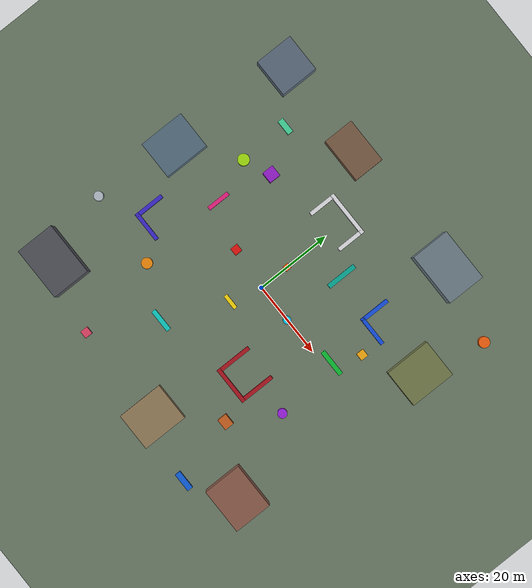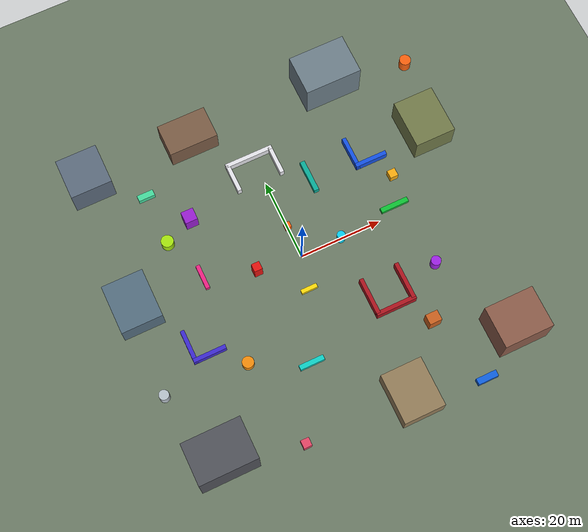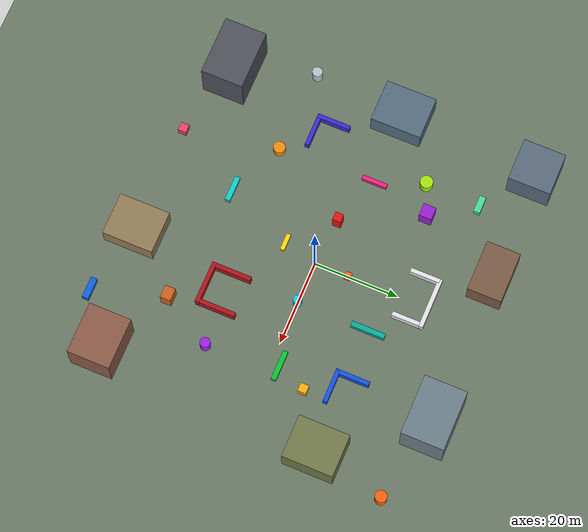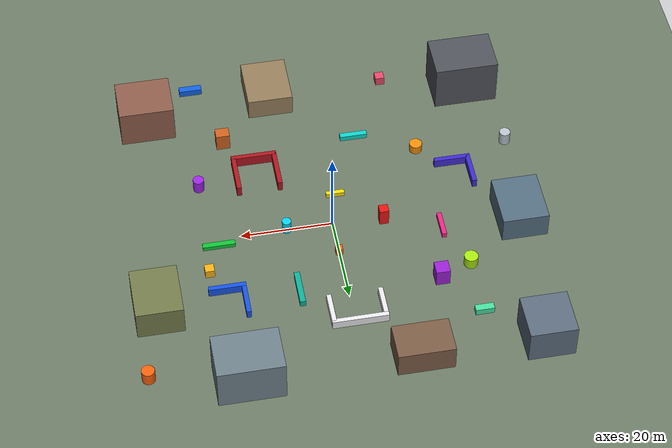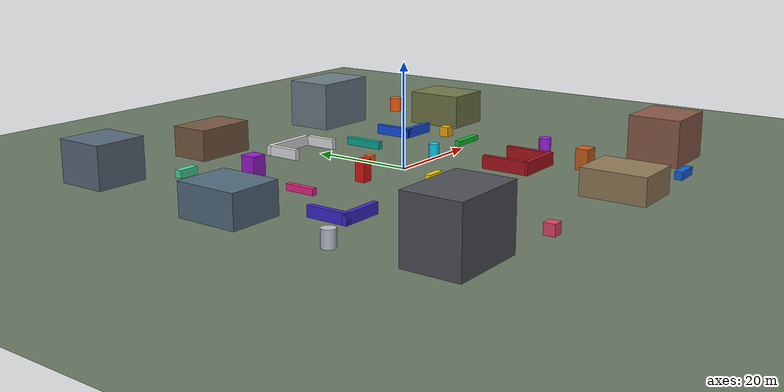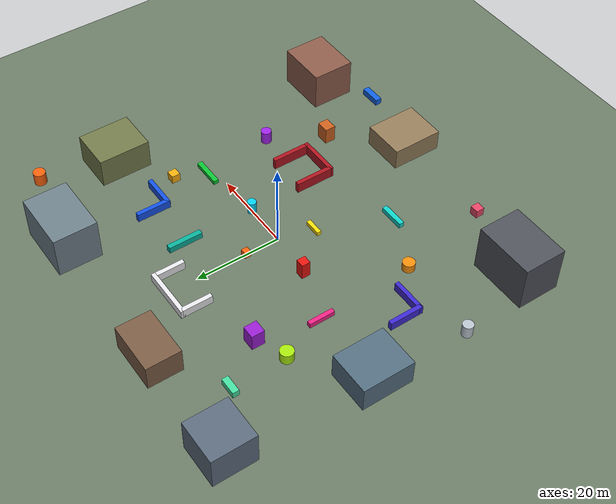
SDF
<?xml version="1.0" encoding="utf-8"?>
<sdf version="1.9">
  <world name="default">
    <gravity>0 0 -9.8</gravity>
    <scene>
      <ambient>0.45 0.45 0.48 1</ambient>
      <background>0.68 0.78 0.90 1</background>
      <shadows>true</shadows>
      <grid>true</grid>
    </scene>

    <light name="flat_field_sun" type="directional">
      <cast_shadows>true</cast_shadows>
      <pose>0 0 40 0 0 0</pose>
      <diffuse>0.9 0.88 0.82 1</diffuse>
      <specular>0.25 0.25 0.25 1</specular>
      <attenuation>
        <range>1000</range>
        <constant>0.9</constant>
        <linear>0.01</linear>
        <quadratic>0.001</quadratic>
      </attenuation>
      <direction>-0.45 0.25 -0.86</direction>
    </light>

    <model name="flat_ground_100m">
      <static>true</static>
      <pose>0 0 0 0 0 0</pose>
      <link name="flat_ground_100m_link">
        <collision name="flat_ground_100m_collision">
          <geometry>
            <plane>
              <normal>0 0 1</normal>
              <size>100 100</size>
            </plane>
          </geometry>
        </collision>
        <visual name="flat_ground_100m_visual">
          <geometry>
            <plane>
              <normal>0 0 1</normal>
              <size>100 100</size>
            </plane>
          </geometry>
          <material>
            <ambient>0.32 0.36 0.31 1</ambient>
            <diffuse>0.42 0.48 0.40 1</diffuse>
            <specular>0.04 0.04 0.04 1</specular>
          </material>
        </visual>
      </link>
    </model>

    <!-- Eight large, primitive building-like blocks. -->
    <model name="building_northwest_slate">
      <static>true</static>
      <pose>-38 38 0 0 0 0</pose>
      <link name="building_northwest_slate_link">
        <pose>0 0 4 0 0 0</pose>
        <collision name="building_northwest_slate_collision">
          <geometry><box><size>10 10 8</size></box></geometry>
        </collision>
        <visual name="building_northwest_slate_visual">
          <geometry><box><size>10 10 8</size></box></geometry>
          <material><ambient>0.25 0.29 0.34 1</ambient><diffuse>0.36 0.42 0.49 1</diffuse></material>
        </visual>
      </link>
    </model>

    <model name="building_north_umber">
      <static>true</static>
      <pose>-12 38 0 0 0 0</pose>
      <link name="building_north_umber_link">
        <pose>0 0 3 0 0 0</pose>
        <collision name="building_north_umber_collision">
          <geometry><box><size>12 8 6</size></box></geometry>
        </collision>
        <visual name="building_north_umber_visual">
          <geometry><box><size>12 8 6</size></box></geometry>
          <material><ambient>0.34 0.25 0.19 1</ambient><diffuse>0.48 0.36 0.27 1</diffuse></material>
        </visual>
      </link>
    </model>

    <model name="building_northeast_steel">
      <static>true</static>
      <pose>24 38 0 0 0 0</pose>
      <link name="building_northeast_steel_link">
        <pose>0 0 5 0 0 0</pose>
        <collision name="building_northeast_steel_collision">
          <geometry><box><size>14 10 10</size></box></geometry>
        </collision>
        <visual name="building_northeast_steel_visual">
          <geometry><box><size>14 10 10</size></box></geometry>
          <material><ambient>0.30 0.35 0.38 1</ambient><diffuse>0.43 0.50 0.54 1</diffuse></material>
        </visual>
      </link>
    </model>

    <model name="building_east_olive">
      <static>true</static>
      <pose>40 17 0 0 0 0</pose>
      <link name="building_east_olive_link">
        <pose>0 0 3.5 0 0 0</pose>
        <collision name="building_east_olive_collision">
          <geometry><box><size>10 12 7</size></box></geometry>
        </collision>
        <visual name="building_east_olive_visual">
          <geometry><box><size>10 12 7</size></box></geometry>
          <material><ambient>0.31 0.33 0.20 1</ambient><diffuse>0.45 0.48 0.29 1</diffuse></material>
        </visual>
      </link>
    </model>

    <model name="building_southeast_clay">
      <static>true</static>
      <pose>36 -36 0 0 0 0</pose>
      <link name="building_southeast_clay_link">
        <pose>0 0 4.5 0 0 0</pose>
        <collision name="building_southeast_clay_collision">
          <geometry><box><size>12 10 9</size></box></geometry>
        </collision>
        <visual name="building_southeast_clay_visual">
          <geometry><box><size>12 10 9</size></box></geometry>
          <material><ambient>0.38 0.25 0.20 1</ambient><diffuse>0.55 0.36 0.29 1</diffuse></material>
        </visual>
      </link>
    </model>

    <model name="building_south_sandstone">
      <static>true</static>
      <pose>8 -40 0 0 0 0</pose>
      <link name="building_south_sandstone_link">
        <pose>0 0 2.5 0 0 0</pose>
        <collision name="building_south_sandstone_collision">
          <geometry><box><size>10 12 5</size></box></geometry>
        </collision>
        <visual name="building_south_sandstone_visual">
          <geometry><box><size>10 12 5</size></box></geometry>
          <material><ambient>0.40 0.34 0.25 1</ambient><diffuse>0.58 0.49 0.35 1</diffuse></material>
        </visual>
      </link>
    </model>

    <model name="building_southwest_graphite">
      <static>true</static>
      <pose>-36 -35 0 0 0 0</pose>
      <link name="building_southwest_graphite_link">
        <pose>0 0 5.5 0 0 0</pose>
        <collision name="building_southwest_graphite_collision">
          <geometry><box><size>14 10 11</size></box></geometry>
        </collision>
        <visual name="building_southwest_graphite_visual">
          <geometry><box><size>14 10 11</size></box></geometry>
          <material><ambient>0.20 0.21 0.23 1</ambient><diffuse>0.31 0.32 0.35 1</diffuse></material>
        </visual>
      </link>
    </model>

    <model name="building_west_bluegray">
      <static>true</static>
      <pose>-40 5 0 0 0 0</pose>
      <link name="building_west_bluegray_link">
        <pose>0 0 3 0 0 0</pose>
        <collision name="building_west_bluegray_collision">
          <geometry><box><size>10 12 6</size></box></geometry>
        </collision>
        <visual name="building_west_bluegray_visual">
          <geometry><box><size>10 12 6</size></box></geometry>
          <material><ambient>0.22 0.29 0.34 1</ambient><diffuse>0.33 0.43 0.50 1</diffuse></material>
        </visual>
      </link>
    </model>

    <!-- Twenty-two smaller obstacles and compound obstacle groups. -->
    <model name="cube_spawn_north_orange">
      <static>true</static>
      <pose>0 8 0 0 0 0</pose>
      <link name="cube_spawn_north_orange_link">
        <pose>0 0 0.75 0 0 0</pose>
        <collision name="cube_spawn_north_orange_collision">
          <geometry><box><size>1.5 1.5 1.5</size></box></geometry>
        </collision>
        <visual name="cube_spawn_north_orange_visual">
          <geometry><box><size>1.5 1.5 1.5</size></box></geometry>
          <material><ambient>0.75 0.25 0.03 1</ambient><diffuse>1.0 0.38 0.04 1</diffuse></material>
        </visual>
      </link>
    </model>

    <model name="column_spawn_east_cyan">
      <static>true</static>
      <pose>10 0 0 0 0 0</pose>
      <link name="column_spawn_east_cyan_link">
        <pose>0 0 1.5 0 0 0</pose>
        <collision name="column_spawn_east_cyan_collision">
          <geometry><cylinder><radius>1</radius><length>3</length></cylinder></geometry>
        </collision>
        <visual name="column_spawn_east_cyan_visual">
          <geometry><cylinder><radius>1</radius><length>3</length></cylinder></geometry>
          <material><ambient>0.02 0.55 0.64 1</ambient><diffuse>0.03 0.82 0.95 1</diffuse></material>
        </visual>
      </link>
    </model>

    <model name="barrier_spawn_south_yellow">
      <static>true</static>
      <pose>-2 -8 0 0 0 0</pose>
      <link name="barrier_spawn_south_yellow_link">
        <pose>0 0 0.5 0 0 0</pose>
        <collision name="barrier_spawn_south_yellow_collision">
          <geometry><box><size>4 1 1</size></box></geometry>
        </collision>
        <visual name="barrier_spawn_south_yellow_visual">
          <geometry><box><size>4 1 1</size></box></geometry>
          <material><ambient>0.75 0.62 0.02 1</ambient><diffuse>1.0 0.86 0.03 1</diffuse></material>
        </visual>
      </link>
    </model>

    <model name="tower_spawn_west_red">
      <static>true</static>
      <pose>-11 1 0 0 0 0</pose>
      <link name="tower_spawn_west_red_link">
        <pose>0 0 2 0 0 0</pose>
        <collision name="tower_spawn_west_red_collision">
          <geometry><box><size>2 2 4</size></box></geometry>
        </collision>
        <visual name="tower_spawn_west_red_visual">
          <geometry><box><size>2 2 4</size></box></geometry>
          <material><ambient>0.62 0.05 0.04 1</ambient><diffuse>0.90 0.08 0.06 1</diffuse></material>
        </visual>
      </link>
    </model>

    <model name="barrier_north_mid_teal">
      <static>true</static>
      <pose>10 17 0 0 0 0</pose>
      <link name="barrier_north_mid_teal_link">
        <pose>0 0 0.75 0 0 0</pose>
        <collision name="barrier_north_mid_teal_collision">
          <geometry><box><size>1.2 8 1.5</size></box></geometry>
        </collision>
        <visual name="barrier_north_mid_teal_visual">
          <geometry><box><size>1.2 8 1.5</size></box></geometry>
          <material><ambient>0.02 0.40 0.36 1</ambient><diffuse>0.03 0.68 0.60 1</diffuse></material>
        </visual>
      </link>
    </model>

    <model name="tower_northwest_purple">
      <static>true</static>
      <pose>-20 19 0 0 0 0</pose>
      <link name="tower_northwest_purple_link">
        <pose>0 0 2 0 0 0</pose>
        <collision name="tower_northwest_purple_collision">
          <geometry><box><size>3 3 4</size></box></geometry>
        </collision>
        <visual name="tower_northwest_purple_visual">
          <geometry><box><size>3 3 4</size></box></geometry>
          <material><ambient>0.38 0.08 0.52 1</ambient><diffuse>0.60 0.12 0.82 1</diffuse></material>
        </visual>
      </link>
    </model>

    <model name="column_northwest_lime">
      <static>true</static>
      <pose>-27 16 0 0 0 0</pose>
      <link name="column_northwest_lime_link">
        <pose>0 0 1.25 0 0 0</pose>
        <collision name="column_northwest_lime_collision">
          <geometry><cylinder><radius>1.5</radius><length>2.5</length></cylinder></geometry>
        </collision>
        <visual name="column_northwest_lime_visual">
          <geometry><cylinder><radius>1.5</radius><length>2.5</length></cylinder></geometry>
          <material><ambient>0.43 0.62 0.03 1</ambient><diffuse>0.65 0.90 0.05 1</diffuse></material>
        </visual>
      </link>
    </model>

    <model name="l_wall_northeast_blue">
      <static>true</static>
      <pose>25 18 0 0 0 0</pose>
      <link name="l_wall_northeast_blue_horizontal_link">
        <pose>0 -3.5 1 0 0 0</pose>
        <collision name="l_wall_northeast_blue_horizontal_collision">
          <geometry><box><size>8 1 2</size></box></geometry>
        </collision>
        <visual name="l_wall_northeast_blue_horizontal_visual">
          <geometry><box><size>8 1 2</size></box></geometry>
          <material><ambient>0.05 0.20 0.62 1</ambient><diffuse>0.08 0.32 0.90 1</diffuse></material>
        </visual>
      </link>
      <link name="l_wall_northeast_blue_vertical_link">
        <pose>-3.5 0 1 0 0 0</pose>
        <collision name="l_wall_northeast_blue_vertical_collision">
          <geometry><box><size>1 8 2</size></box></geometry>
        </collision>
        <visual name="l_wall_northeast_blue_vertical_visual">
          <geometry><box><size>1 8 2</size></box></geometry>
          <material><ambient>0.05 0.20 0.62 1</ambient><diffuse>0.08 0.32 0.90 1</diffuse></material>
        </visual>
      </link>
    </model>

    <model name="u_enclosure_northcenter_white">
      <static>true</static>
      <pose>-1 24 0 0 0 0</pose>
      <link name="u_enclosure_northcenter_white_back_link">
        <pose>0 3.5 1 0 0 0</pose>
        <collision name="u_enclosure_northcenter_white_back_collision">
          <geometry><box><size>12 1 2</size></box></geometry>
        </collision>
        <visual name="u_enclosure_northcenter_white_back_visual">
          <geometry><box><size>12 1 2</size></box></geometry>
          <material><ambient>0.68 0.68 0.70 1</ambient><diffuse>0.90 0.90 0.92 1</diffuse></material>
        </visual>
      </link>
      <link name="u_enclosure_northcenter_white_left_link">
        <pose>-5.5 0 1 0 0 0</pose>
        <collision name="u_enclosure_northcenter_white_left_collision">
          <geometry><box><size>1 7 2</size></box></geometry>
        </collision>
        <visual name="u_enclosure_northcenter_white_left_visual">
          <geometry><box><size>1 7 2</size></box></geometry>
          <material><ambient>0.68 0.68 0.70 1</ambient><diffuse>0.90 0.90 0.92 1</diffuse></material>
        </visual>
      </link>
      <link name="u_enclosure_northcenter_white_right_link">
        <pose>5.5 0 1 0 0 0</pose>
        <collision name="u_enclosure_northcenter_white_right_collision">
          <geometry><box><size>1 7 2</size></box></geometry>
        </collision>
        <visual name="u_enclosure_northcenter_white_right_visual">
          <geometry><box><size>1 7 2</size></box></geometry>
          <material><ambient>0.68 0.68 0.70 1</ambient><diffuse>0.90 0.90 0.92 1</diffuse></material>
        </visual>
      </link>
    </model>

    <model name="short_wall_west_mid_pink">
      <static>true</static>
      <pose>-23 5 0 0 0 0</pose>
      <link name="short_wall_west_mid_pink_link">
        <pose>0 0 0.6 0 0 0</pose>
        <collision name="short_wall_west_mid_pink_collision">
          <geometry><box><size>1 6 1.2</size></box></geometry>
        </collision>
        <visual name="short_wall_west_mid_pink_visual">
          <geometry><box><size>1 6 1.2</size></box></geometry>
          <material><ambient>0.68 0.08 0.36 1</ambient><diffuse>0.94 0.13 0.52 1</diffuse></material>
        </visual>
      </link>
    </model>

    <model name="wide_wall_east_mid_green">
      <static>true</static>
      <pose>25 2 0 0 0 0</pose>
      <link name="wide_wall_east_mid_green_link">
        <pose>0 0 0.5 0 0 0</pose>
        <collision name="wide_wall_east_mid_green_collision">
          <geometry><box><size>7 1.2 1</size></box></geometry>
        </collision>
        <visual name="wide_wall_east_mid_green_visual">
          <geometry><box><size>7 1.2 1</size></box></geometry>
          <material><ambient>0.03 0.48 0.12 1</ambient><diffuse>0.05 0.76 0.20 1</diffuse></material>
        </visual>
      </link>
    </model>

    <model name="dead_end_u_southeast_maroon">
      <static>true</static>
      <pose>14 -16 0 0 0 0</pose>
      <link name="dead_end_u_southeast_maroon_back_link">
        <pose>0 -4.5 1.25 0 0 0</pose>
        <collision name="dead_end_u_southeast_maroon_back_collision">
          <geometry><box><size>10 1 2.5</size></box></geometry>
        </collision>
        <visual name="dead_end_u_southeast_maroon_back_visual">
          <geometry><box><size>10 1 2.5</size></box></geometry>
          <material><ambient>0.42 0.05 0.08 1</ambient><diffuse>0.68 0.08 0.12 1</diffuse></material>
        </visual>
      </link>
      <link name="dead_end_u_southeast_maroon_left_link">
        <pose>-4.5 0 1.25 0 0 0</pose>
        <collision name="dead_end_u_southeast_maroon_left_collision">
          <geometry><box><size>1 9 2.5</size></box></geometry>
        </collision>
        <visual name="dead_end_u_southeast_maroon_left_visual">
          <geometry><box><size>1 9 2.5</size></box></geometry>
          <material><ambient>0.42 0.05 0.08 1</ambient><diffuse>0.68 0.08 0.12 1</diffuse></material>
        </visual>
      </link>
      <link name="dead_end_u_southeast_maroon_right_link">
        <pose>4.5 0 1.25 0 0 0</pose>
        <collision name="dead_end_u_southeast_maroon_right_collision">
          <geometry><box><size>1 9 2.5</size></box></geometry>
        </collision>
        <visual name="dead_end_u_southeast_maroon_right_visual">
          <geometry><box><size>1 9 2.5</size></box></geometry>
          <material><ambient>0.42 0.05 0.08 1</ambient><diffuse>0.68 0.08 0.12 1</diffuse></material>
        </visual>
      </link>
    </model>

    <model name="column_southeast_mid_violet">
      <static>true</static>
      <pose>27 -15 0 0 0 0</pose>
      <link name="column_southeast_mid_violet_link">
        <pose>0 0 1.5 0 0 0</pose>
        <collision name="column_southeast_mid_violet_collision">
          <geometry><cylinder><radius>1.2</radius><length>3</length></cylinder></geometry>
        </collision>
        <visual name="column_southeast_mid_violet_visual">
          <geometry><cylinder><radius>1.2</radius><length>3</length></cylinder></geometry>
          <material><ambient>0.38 0.08 0.58 1</ambient><diffuse>0.62 0.13 0.90 1</diffuse></material>
        </visual>
      </link>
    </model>

    <model name="tower_southeast_inner_copper">
      <static>true</static>
      <pose>20 -27 0 0 0 0</pose>
      <link name="tower_southeast_inner_copper_link">
        <pose>0 0 2 0 0 0</pose>
        <collision name="tower_southeast_inner_copper_collision">
          <geometry><box><size>3 2.5 4</size></box></geometry>
        </collision>
        <visual name="tower_southeast_inner_copper_visual">
          <geometry><box><size>3 2.5 4</size></box></geometry>
          <material><ambient>0.55 0.25 0.08 1</ambient><diffuse>0.80 0.38 0.12 1</diffuse></material>
        </visual>
      </link>
    </model>

    <model name="barrier_south_mid_aqua">
      <static>true</static>
      <pose>-9 -24 0 0 0 0</pose>
      <link name="barrier_south_mid_aqua_link">
        <pose>0 0 0.6 0 0 0</pose>
        <collision name="barrier_south_mid_aqua_collision">
          <geometry><box><size>6 1.2 1.2</size></box></geometry>
        </collision>
        <visual name="barrier_south_mid_aqua_visual">
          <geometry><box><size>6 1.2 1.2</size></box></geometry>
          <material><ambient>0.03 0.54 0.52 1</ambient><diffuse>0.05 0.82 0.78 1</diffuse></material>
        </visual>
      </link>
    </model>

    <model name="column_southwest_inner_amber">
      <static>true</static>
      <pose>-22 -18 0 0 0 0</pose>
      <link name="column_southwest_inner_amber_link">
        <pose>0 0 1 0 0 0</pose>
        <collision name="column_southwest_inner_amber_collision">
          <geometry><cylinder><radius>1.4</radius><length>2</length></cylinder></geometry>
        </collision>
        <visual name="column_southwest_inner_amber_visual">
          <geometry><cylinder><radius>1.4</radius><length>2</length></cylinder></geometry>
          <material><ambient>0.70 0.38 0.03 1</ambient><diffuse>0.96 0.55 0.04 1</diffuse></material>
        </visual>
      </link>
    </model>

    <model name="l_wall_southwest_indigo">
      <static>true</static>
      <pose>-29 -9 0 0 0 0</pose>
      <link name="l_wall_southwest_indigo_horizontal_link">
        <pose>0 -3.5 1 0 0 0</pose>
        <collision name="l_wall_southwest_indigo_horizontal_collision">
          <geometry><box><size>8 1 2</size></box></geometry>
        </collision>
        <visual name="l_wall_southwest_indigo_horizontal_visual">
          <geometry><box><size>8 1 2</size></box></geometry>
          <material><ambient>0.15 0.10 0.52 1</ambient><diffuse>0.24 0.16 0.82 1</diffuse></material>
        </visual>
      </link>
      <link name="l_wall_southwest_indigo_vertical_link">
        <pose>-3.5 0 1 0 0 0</pose>
        <collision name="l_wall_southwest_indigo_vertical_collision">
          <geometry><box><size>1 8 2</size></box></geometry>
        </collision>
        <visual name="l_wall_southwest_indigo_vertical_visual">
          <geometry><box><size>1 8 2</size></box></geometry>
          <material><ambient>0.15 0.10 0.52 1</ambient><diffuse>0.24 0.16 0.82 1</diffuse></material>
        </visual>
      </link>
    </model>

    <model name="column_far_west_silver">
      <static>true</static>
      <pose>-42 -17 0 0 0 0</pose>
      <link name="column_far_west_silver_link">
        <pose>0 0 1.5 0 0 0</pose>
        <collision name="column_far_west_silver_collision">
          <geometry><cylinder><radius>1.2</radius><length>3</length></cylinder></geometry>
        </collision>
        <visual name="column_far_west_silver_visual">
          <geometry><cylinder><radius>1.2</radius><length>3</length></cylinder></geometry>
          <material><ambient>0.52 0.55 0.58 1</ambient><diffuse>0.72 0.76 0.80 1</diffuse></material>
        </visual>
      </link>
    </model>

    <model name="cube_far_southwest_rose">
      <static>true</static>
      <pose>-18 -40 0 0 0 0</pose>
      <link name="cube_far_southwest_rose_link">
        <pose>0 0 1 0 0 0</pose>
        <collision name="cube_far_southwest_rose_collision">
          <geometry><box><size>2 2 2</size></box></geometry>
        </collision>
        <visual name="cube_far_southwest_rose_visual">
          <geometry><box><size>2 2 2</size></box></geometry>
          <material><ambient>0.62 0.18 0.28 1</ambient><diffuse>0.90 0.27 0.40 1</diffuse></material>
        </visual>
      </link>
    </model>

    <model name="barrier_far_southeast_blue">
      <static>true</static>
      <pose>25 -44 0 0 0 0</pose>
      <link name="barrier_far_southeast_blue_link">
        <pose>0 0 0.75 0 0 0</pose>
        <collision name="barrier_far_southeast_blue_collision">
          <geometry><box><size>5 1.5 1.5</size></box></geometry>
        </collision>
        <visual name="barrier_far_southeast_blue_visual">
          <geometry><box><size>5 1.5 1.5</size></box></geometry>
          <material><ambient>0.04 0.24 0.58 1</ambient><diffuse>0.06 0.38 0.88 1</diffuse></material>
        </visual>
      </link>
    </model>

    <model name="column_far_northeast_tangerine">
      <static>true</static>
      <pose>44 34 0 0 0 0</pose>
      <link name="column_far_northeast_tangerine_link">
        <pose>0 0 1.5 0 0 0</pose>
        <collision name="column_far_northeast_tangerine_collision">
          <geometry><cylinder><radius>1.4</radius><length>3</length></cylinder></geometry>
        </collision>
        <visual name="column_far_northeast_tangerine_visual">
          <geometry><cylinder><radius>1.4</radius><length>3</length></cylinder></geometry>
          <material><ambient>0.70 0.25 0.04 1</ambient><diffuse>0.98 0.38 0.05 1</diffuse></material>
        </visual>
      </link>
    </model>

    <model name="wall_far_northwest_mint">
      <static>true</static>
      <pose>-27 29 0 0 0 0</pose>
      <link name="wall_far_northwest_mint_link">
        <pose>0 0 0.75 0 0 0</pose>
        <collision name="wall_far_northwest_mint_collision">
          <geometry><box><size>4 1.5 1.5</size></box></geometry>
        </collision>
        <visual name="wall_far_northwest_mint_visual">
          <geometry><box><size>4 1.5 1.5</size></box></geometry>
          <material><ambient>0.18 0.58 0.42 1</ambient><diffuse>0.27 0.86 0.62 1</diffuse></material>
        </visual>
      </link>
    </model>

    <model name="cube_east_upper_gold">
      <static>true</static>
      <pose>28 9 0 0 0 0</pose>
      <link name="cube_east_upper_gold_link">
        <pose>0 0 1 0 0 0</pose>
        <collision name="cube_east_upper_gold_collision">
          <geometry><box><size>2 2 2</size></box></geometry>
        </collision>
        <visual name="cube_east_upper_gold_visual">
          <geometry><box><size>2 2 2</size></box></geometry>
          <material><ambient>0.70 0.48 0.04 1</ambient><diffuse>0.98 0.68 0.06 1</diffuse></material>
        </visual>
      </link>
    </model>

    <gui fullscreen="0">
      <camera name="flat_field_start_camera">
        <pose>-25 -25 24 0 0.60 0.7854</pose>
        <view_controller>orbit</view_controller>
        <projection_type>perspective</projection_type>
      </camera>
    </gui>
  </world>
</sdf>
